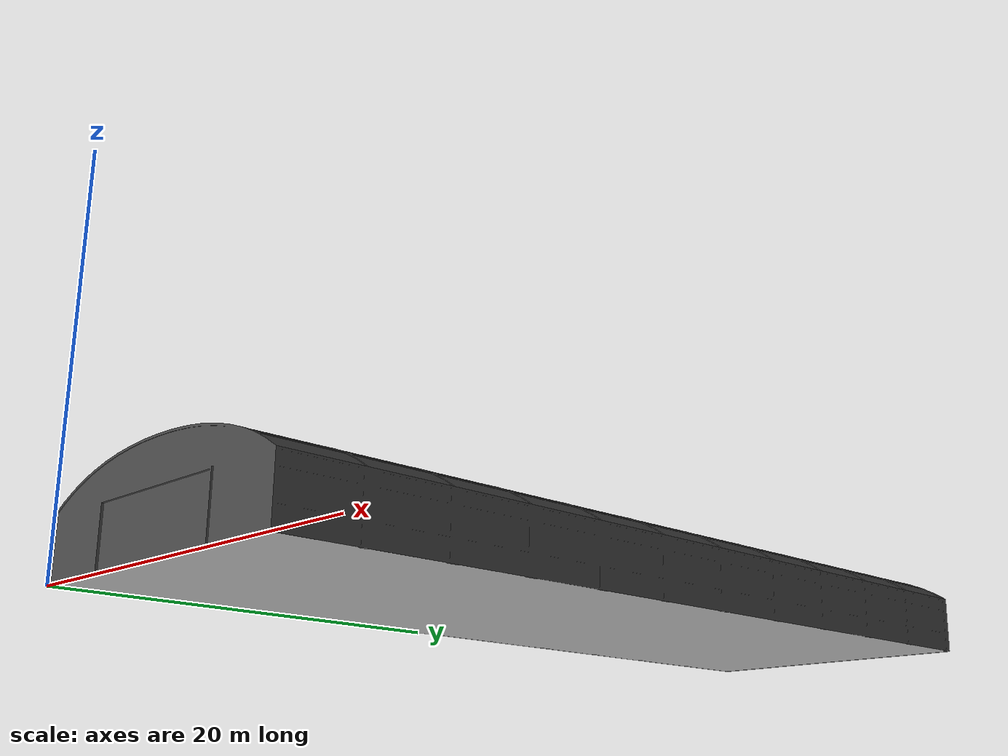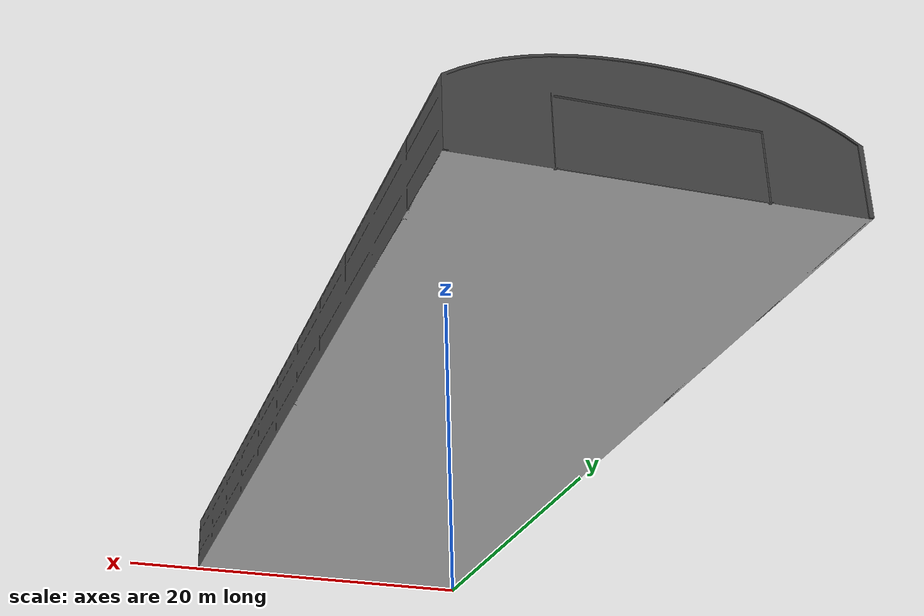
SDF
<sdf version="1.9">
  <model name="hangar">
    <static>true</static>

    <link name="link">
      <visual name="visual">
        <geometry>
          <mesh>
            <uri>model://hangar/meshes/hangar.dae</uri>
          </mesh>
        </geometry>
      </visual>

      <collision name="collision">
        <geometry>
          <mesh>
            <uri>model://hangar/meshes/hangar.dae</uri>
          </mesh>
        </geometry>
      </collision>
    </link>
  </model>
</sdf>
